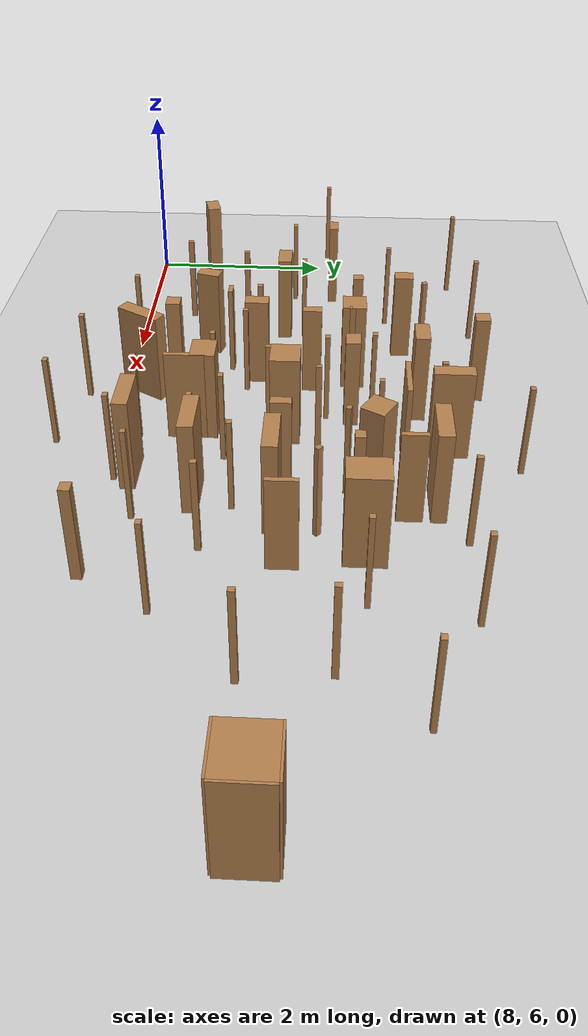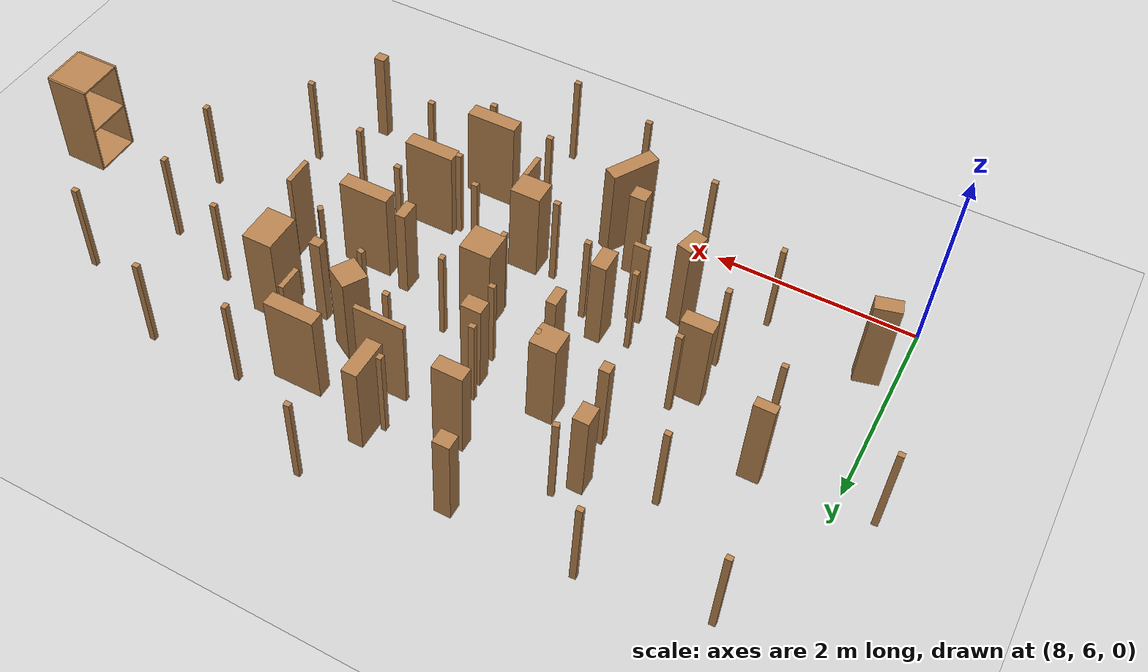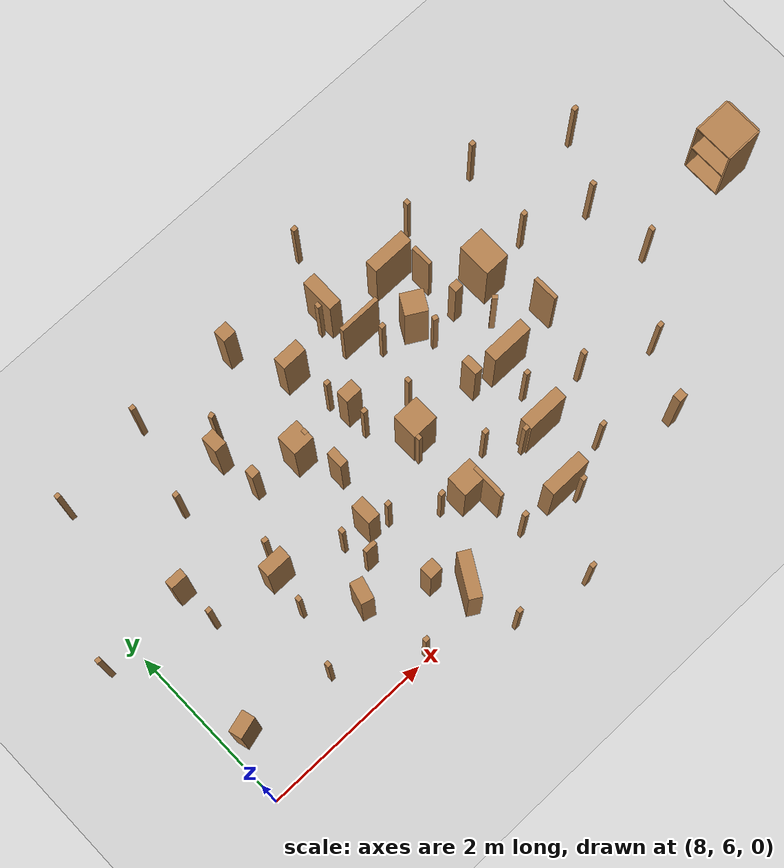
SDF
<sdf version="1.7">
 <world name="default">
  <model name="ground_plane">
   <pose>0 0 0 0 -0 0.716815</pose>
   <static>1</static>
   <link name="link">
    <collision name="collision">
     <geometry><plane><normal>0 0 1</normal><size>100 100</size></plane></geometry>
     <surface><friction><ode><mu>100</mu><mu2>50</mu2></ode></friction></surface>
    </collision>
    <visual name="visual">
     <cast_shadows>0</cast_shadows>
     <geometry><plane><normal>0 0 1</normal><size>100 100</size></plane></geometry>
     <material>
      <script><uri>file://media/materials/scripts/gazebo.material</uri><name>Gazebo/Grey</name></script>
     </material>
    </visual>
   </link>
  </model>
  <model name="t7">
   <pose>13.3103 7.35329 0 0 -0 0</pose>
   <link name="Wall_0">
    <collision name="Wall_0_Collision">
     <geometry><box><size>0.5 0.15 1</size></box></geometry>
     <pose>0 0 0.5 0 -0 0</pose>
    </collision>
    <visual name="Wall_0_Visual">
     <pose>0 0 0.5 0 -0 0</pose>
     <geometry><box><size>0.5 0.15 1</size></box></geometry>
     <material>
      <script><uri>file://media/materials/scripts/gazebo.material</uri><name>Gazebo/Wood</name></script>
      <ambient>1 1 1 1</ambient>
     </material>
     <meta><layer>0</layer></meta>
    </visual>
    <pose>-0.649487 1.88869 0 0 -0 0</pose>
   </link>
   <link name="Wall_101">
    <collision name="Wall_101_Collision">
     <geometry><box><size>0.3 0.25 1</size></box></geometry>
     <pose>0 0 0.5 0 -0 0</pose>
    </collision>
    <visual name="Wall_101_Visual">
     <pose>0 0 0.5 0 -0 0</pose>
     <geometry><box><size>0.3 0.25 1</size></box></geometry>
     <material>
      <script><uri>file://media/materials/scripts/gazebo.material</uri><name>Gazebo/Wood</name></script>
      <ambient>1 1 1 1</ambient>
     </material>
     <meta><layer>0</layer></meta>
    </visual>
    <pose>-1.7299 -0.40612 0 0 -0 0</pose>
   </link>
   <link name="Wall_105">
    <collision name="Wall_105_Collision">
     <geometry><box><size>0.4 0.15 1</size></box></geometry>
     <pose>0 0 0.5 0 -0 0</pose>
    </collision>
    <visual name="Wall_105_Visual">
     <pose>0 0 0.5 0 -0 0</pose>
     <geometry><box><size>0.4 0.15 1</size></box></geometry>
     <material>
      <script><uri>file://media/materials/scripts/gazebo.material</uri><name>Gazebo/Wood</name></script>
      <ambient>1 1 1 1</ambient>
     </material>
     <meta><layer>0</layer></meta>
    </visual>
    <pose>-1.44962 2.04439 0 0 -0 -1.5708</pose>
   </link>
   <link name="Wall_36">
    <collision name="Wall_36_Collision">
     <geometry><box><size>0.26 0.25 1</size></box></geometry>
     <pose>0 0 0.5 0 -0 0</pose>
    </collision>
    <visual name="Wall_36_Visual">
     <pose>0 0 0.5 0 -0 0</pose>
     <geometry><box><size>0.26 0.25 1</size></box></geometry>
     <material>
      <script><uri>file://media/materials/scripts/gazebo.material</uri><name>Gazebo/Wood</name></script>
      <ambient>1 1 1 1</ambient>
     </material>
     <meta><layer>0</layer></meta>
    </visual>
    <pose>-2.70321 1.09078 0 0 -0 0</pose>
   </link>
   <link name="Wall_38">
    <collision name="Wall_38_Collision">
     <geometry><box><size>0.26 0.25 1</size></box></geometry>
     <pose>0 0 0.5 0 -0 0</pose>
    </collision>
    <visual name="Wall_38_Visual">
     <pose>0 0 0.5 0 -0 0</pose>
     <geometry><box><size>0.26 0.25 1</size></box></geometry>
     <material>
      <script><uri>file://media/materials/scripts/gazebo.material</uri><name>Gazebo/Wood</name></script>
      <ambient>1 1 1 1</ambient>
     </material>
     <meta><layer>0</layer></meta>
    </visual>
    <pose>-0.842821 1.30664 0 0 -0 -0.523599</pose>
   </link>
   <link name="Wall_54">
    <collision name="Wall_54_Collision">
     <geometry><box><size>0.5 0.15 1</size></box></geometry>
     <pose>0 0 0.5 0 -0 0</pose>
    </collision>
    <visual name="Wall_54_Visual">
     <pose>0 0 0.5 0 -0 0</pose>
     <geometry><box><size>0.5 0.15 1</size></box></geometry>
     <material>
      <script><uri>file://media/materials/scripts/gazebo.material</uri><name>Gazebo/Wood</name></script>
      <ambient>1 1 1 1</ambient>
     </material>
     <meta><layer>0</layer></meta>
    </visual>
    <pose>-0.981633 -1.06267 0 0 -0 0</pose>
   </link>
   <link name="Wall_58">
    <collision name="Wall_58_Collision">
     <geometry><box><size>0.5 0.15 1</size></box></geometry>
     <pose>0 0 0.5 0 -0 0</pose>
    </collision>
    <visual name="Wall_58_Visual">
     <pose>0 0 0.5 0 -0 0</pose>
     <geometry><box><size>0.5 0.15 1</size></box></geometry>
     <material>
      <script><uri>file://media/materials/scripts/gazebo.material</uri><name>Gazebo/Wood</name></script>
      <ambient>1 1 1 1</ambient>
     </material>
     <meta><layer>0</layer></meta>
    </visual>
    <pose>-0.425004 0.347148 0 0 -0 0</pose>
   </link>
   <link name="Wall_60">
    <collision name="Wall_60_Collision">
     <geometry><box><size>0.3 0.15 1</size></box></geometry>
     <pose>0 0 0.5 0 -0 0</pose>
    </collision>
    <visual name="Wall_60_Visual">
     <pose>0 0 0.5 0 -0 0</pose>
     <geometry><box><size>0.3 0.15 1</size></box></geometry>
     <material>
      <script><uri>file://media/materials/scripts/gazebo.material</uri><name>Gazebo/Wood</name></script>
      <ambient>1 1 1 1</ambient>
     </material>
     <meta><layer>0</layer></meta>
    </visual>
    <pose>-3.72546 0.303649 0 0 -0 0</pose>
   </link>
   <link name="Wall_64">
    <collision name="Wall_64_Collision">
     <geometry><box><size>0.499906 0.15 1</size></box></geometry>
     <pose>0 0 0.5 0 -0 0</pose>
    </collision>
    <visual name="Wall_64_Visual">
     <pose>0 0 0.5 0 -0 0</pose>
     <geometry><box><size>0.499906 0.15 1</size></box></geometry>
     <material>
      <script><uri>file://media/materials/scripts/gazebo.material</uri><name>Gazebo/Wood</name></script>
      <ambient>1 1 1 1</ambient>
     </material>
     <meta><layer>0</layer></meta>
    </visual>
    <pose>-2.40422 -1.13934 0 0 -0 -2.09455</pose>
   </link>
   <link name="Wall_66">
    <collision name="Wall_66_Collision">
     <geometry><box><size>0.2 0.15 1</size></box></geometry>
     <pose>0 0 0.5 0 -0 0</pose>
    </collision>
    <visual name="Wall_66_Visual">
     <pose>0 0 0.5 0 -0 0</pose>
     <geometry><box><size>0.2 0.15 1</size></box></geometry>
     <material>
      <script><uri>file://media/materials/scripts/gazebo.material</uri><name>Gazebo/Wood</name></script>
      <ambient>1 1 1 1</ambient>
     </material>
     <meta><layer>0</layer></meta>
    </visual>
    <pose>-3.32256 1.63712 0 0 -0 -1.5708</pose>
   </link>
   <link name="Wall_70">
    <collision name="Wall_70_Collision">
     <geometry><box><size>0.3 0.15 1</size></box></geometry>
     <pose>0 0 0.5 0 -0 0</pose>
    </collision>
    <visual name="Wall_70_Visual">
     <pose>0 0 0.5 0 -0 0</pose>
     <geometry><box><size>0.3 0.15 1</size></box></geometry>
     <material>
      <script><uri>file://media/materials/scripts/gazebo.material</uri><name>Gazebo/Wood</name></script>
      <ambient>1 1 1 1</ambient>
     </material>
     <meta><layer>0</layer></meta>
    </visual>
    <pose>-2.14832 1.77582 0 0 -0 0</pose>
   </link>
   <link name="Wall_74">
    <collision name="Wall_74_Collision">
     <geometry><box><size>0.2 0.15 1</size></box></geometry>
     <pose>0 0 0.5 0 -0 0</pose>
    </collision>
    <visual name="Wall_74_Visual">
     <pose>0 0 0.5 0 -0 0</pose>
     <geometry><box><size>0.2 0.15 1</size></box></geometry>
     <material>
      <script><uri>file://media/materials/scripts/gazebo.material</uri><name>Gazebo/Wood</name></script>
      <ambient>1 1 1 1</ambient>
     </material>
     <meta><layer>0</layer></meta>
    </visual>
    <pose>-1.97481 1.07494 0 0 -0 0</pose>
   </link>
   <link name="Wall_78">
    <collision name="Wall_78_Collision">
     <geometry><box><size>0.31 0.3 1</size></box></geometry>
     <pose>0 0 0.5 0 -0 0</pose>
    </collision>
    <visual name="Wall_78_Visual">
     <pose>0 0 0.5 0 -0 0</pose>
     <geometry><box><size>0.31 0.3 1</size></box></geometry>
     <material>
      <script><uri>file://media/materials/scripts/gazebo.material</uri><name>Gazebo/Wood</name></script>
      <ambient>1 1 1 1</ambient>
     </material>
     <meta><layer>0</layer></meta>
    </visual>
    <pose>-1.67805 0.407964 0 0 -0 0</pose>
   </link>
   <link name="Wall_8">
    <collision name="Wall_8_Collision">
     <geometry><box><size>0.25 0.15 1</size></box></geometry>
     <pose>0 0 0.5 0 -0 0</pose>
    </collision>
    <visual name="Wall_8_Visual">
     <pose>0 0 0.5 0 -0 0</pose>
     <geometry><box><size>0.25 0.15 1</size></box></geometry>
     <material>
      <script><uri>file://media/materials/scripts/gazebo.material</uri><name>Gazebo/Wood</name></script>
      <ambient>1 1 1 1</ambient>
     </material>
     <meta><layer>0</layer></meta>
    </visual>
    <pose>-2.70615 0.053388 0 0 -0 -1.5708</pose>
   </link>
   <link name="Wall_80">
    <collision name="Wall_80_Collision">
     <geometry><box><size>0.4 0.3 1</size></box></geometry>
     <pose>0 0 0.5 0 -0 0</pose>
    </collision>
    <visual name="Wall_80_Visual">
     <pose>0 0 0.5 0 -0 0</pose>
     <geometry><box><size>0.4 0.3 1</size></box></geometry>
     <material>
      <script><uri>file://media/materials/scripts/gazebo.material</uri><name>Gazebo/Wood</name></script>
      <ambient>1 1 1 1</ambient>
     </material>
     <meta><layer>0</layer></meta>
    </visual>
    <pose>0.066257 1.20372 0 0 -0 1.5708</pose>
   </link>
   <link name="Wall_95">
    <collision name="Wall_95_Collision">
     <geometry><box><size>0.250424 0.15 1</size></box></geometry>
     <pose>0 0 0.5 0 -0 0</pose>
    </collision>
    <visual name="Wall_95_Visual">
     <pose>0 0 0.5 0 -0 0</pose>
     <geometry><box><size>0.250424 0.15 1</size></box></geometry>
     <material>
      <script><uri>file://media/materials/scripts/gazebo.material</uri><name>Gazebo/Wood</name></script>
      <ambient>1 1 1 1</ambient>
     </material>
     <meta><layer>0</layer></meta>
    </visual>
    <pose>-3.29392 -0.515931 0 0 -0 -1.83268</pose>
   </link>
   <link name="Wall_97">
    <collision name="Wall_97_Collision">
     <geometry><box><size>0.5 0.15 1</size></box></geometry>
     <pose>0 0 0.5 0 -0 0</pose>
    </collision>
    <visual name="Wall_97_Visual">
     <pose>0 0 0.5 0 -0 0</pose>
     <geometry><box><size>0.5 0.15 1</size></box></geometry>
     <material>
      <script><uri>file://media/materials/scripts/gazebo.material</uri><name>Gazebo/Wood</name></script>
      <ambient>1 1 1 1</ambient>
     </material>
     <meta><layer>0</layer></meta>
    </visual>
    <pose>-0.667027 -0.419912 0 0 -0 0</pose>
   </link>
   <static>1</static>
  </model>
  <model name="tree8">
   <pose>11.4237 7.76804 0 0 -0 0</pose>
   <link name="Wall_0">
    <collision name="Wall_0_Collision">
     <geometry><box><size>0.5 0.05 1</size></box></geometry>
     <pose>0 0 0.5 0 -0 0</pose>
    </collision>
    <visual name="Wall_0_Visual">
     <pose>0 0 0.5 0 -0 0</pose>
     <geometry><box><size>0.5 0.05 1</size></box></geometry>
     <material>
      <script><uri>file://media/materials/scripts/gazebo.material</uri><name>Gazebo/Wood</name></script>
      <ambient>1 1 1 1</ambient>
     </material>
     <meta><layer>0</layer></meta>
    </visual>
    <pose>0.546374 1.18725 0 0 -0 0</pose>
   </link>
   <link name="Wall_100">
    <collision name="Wall_100_Collision">
     <geometry><box><size>0.06 0.05 1</size></box></geometry>
     <pose>0 0 0.5 0 -0 0</pose>
    </collision>
    <visual name="Wall_100_Visual">
     <pose>0 0 0.5 0 -0 0</pose>
     <geometry><box><size>0.06 0.05 1</size></box></geometry>
     <material>
      <script><uri>file://media/materials/scripts/gazebo.material</uri><name>Gazebo/Wood</name></script>
      <ambient>1 1 1 1</ambient>
     </material>
     <meta><layer>0</layer></meta>
    </visual>
    <pose>1.0867 0.620713 0 0 -0 -0.261799</pose>
   </link>
   <link name="Wall_102">
    <collision name="Wall_102_Collision">
     <geometry><box><size>0.06 0.05 1</size></box></geometry>
     <pose>0 0 0.5 0 -0 0</pose>
    </collision>
    <visual name="Wall_102_Visual">
     <pose>0 0 0.5 0 -0 0</pose>
     <geometry><box><size>0.06 0.05 1</size></box></geometry>
     <material>
      <script><uri>file://media/materials/scripts/gazebo.material</uri><name>Gazebo/Wood</name></script>
      <ambient>1 1 1 1</ambient>
     </material>
     <meta><layer>0</layer></meta>
    </visual>
    <pose>1.68973 0.357341 0 0 -0 -0.785398</pose>
   </link>
   <link name="Wall_104">
    <collision name="Wall_104_Collision">
     <geometry><box><size>0.06 0.05 1</size></box></geometry>
     <pose>0 0 0.5 0 -0 0</pose>
    </collision>
    <visual name="Wall_104_Visual">
     <pose>0 0 0.5 0 -0 0</pose>
     <geometry><box><size>0.06 0.05 1</size></box></geometry>
     <material>
      <script><uri>file://media/materials/scripts/gazebo.material</uri><name>Gazebo/Wood</name></script>
      <ambient>1 1 1 1</ambient>
     </material>
     <meta><layer>0</layer></meta>
    </visual>
    <pose>3.39611 -0.233528 0 0 -0 -1.5708</pose>
   </link>
   <link name="Wall_106">
    <collision name="Wall_106_Collision">
     <geometry><box><size>0.06 0.05 1</size></box></geometry>
     <pose>0 0 0.5 0 -0 0</pose>
    </collision>
    <visual name="Wall_106_Visual">
     <pose>0 0 0.5 0 -0 0</pose>
     <geometry><box><size>0.06 0.05 1</size></box></geometry>
     <material>
      <script><uri>file://media/materials/scripts/gazebo.material</uri><name>Gazebo/Wood</name></script>
      <ambient>1 1 1 1</ambient>
     </material>
     <meta><layer>0</layer></meta>
    </visual>
    <pose>-1.13361 -0.348257 0 0 -0 -1.5708</pose>
   </link>
   <link name="Wall_109">
    <collision name="Wall_109_Collision">
     <geometry><box><size>0.06 0.05 1</size></box></geometry>
     <pose>0 0 0.5 0 -0 0</pose>
    </collision>
    <visual name="Wall_109_Visual">
     <pose>0 0 0.5 0 -0 0</pose>
     <geometry><box><size>0.06 0.05 1</size></box></geometry>
     <material>
      <script><uri>file://media/materials/scripts/gazebo.material</uri><name>Gazebo/Wood</name></script>
      <ambient>1 1 1 1</ambient>
     </material>
     <meta><layer>0</layer></meta>
    </visual>
    <pose>0.999504 -1.63628 0 0 -0 0</pose>
   </link>
   <link name="Wall_11">
    <collision name="Wall_11_Collision">
     <geometry><box><size>0.06 0.05 1</size></box></geometry>
     <pose>0 0 0.5 0 -0 0</pose>
    </collision>
    <visual name="Wall_11_Visual">
     <pose>0 0 0.5 0 -0 0</pose>
     <geometry><box><size>0.06 0.05 1</size></box></geometry>
     <material>
      <script><uri>file://media/materials/scripts/gazebo.material</uri><name>Gazebo/Wood</name></script>
      <ambient>1 1 1 1</ambient>
     </material>
     <meta><layer>0</layer></meta>
    </visual>
    <pose>0.943729 -0.863692 0 0 -0 0</pose>
   </link>
   <link name="Wall_111">
    <collision name="Wall_111_Collision">
     <geometry><box><size>0.06 0.05 1</size></box></geometry>
     <pose>0 0 0.5 0 -0 0</pose>
    </collision>
    <visual name="Wall_111_Visual">
     <pose>0 0 0.5 0 -0 0</pose>
     <geometry><box><size>0.06 0.05 1</size></box></geometry>
     <material>
      <script><uri>file://media/materials/scripts/gazebo.material</uri><name>Gazebo/Wood</name></script>
      <ambient>1 1 1 1</ambient>
     </material>
     <meta><layer>0</layer></meta>
    </visual>
    <pose>0.697383 2.33221 0 0 -0 0</pose>
   </link>
   <link name="Wall_115">
    <collision name="Wall_115_Collision">
     <geometry><box><size>0.11 0.1 1</size></box></geometry>
     <pose>0 0 0.5 0 -0 0</pose>
    </collision>
    <visual name="Wall_115_Visual">
     <pose>0 0 0.5 0 -0 0</pose>
     <geometry><box><size>0.11 0.1 1</size></box></geometry>
     <material>
      <script><uri>file://media/materials/scripts/gazebo.material</uri><name>Gazebo/Wood</name></script>
      <ambient>1 1 1 1</ambient>
     </material>
     <meta><layer>0</layer></meta>
    </visual>
    <pose>1.48399 0.72088 0 0 -0 0</pose>
   </link>
   <link name="Wall_117">
    <collision name="Wall_117_Collision">
     <geometry><box><size>0.06 0.05 1</size></box></geometry>
     <pose>0 0 0.5 0 -0 0</pose>
    </collision>
    <visual name="Wall_117_Visual">
     <pose>0 0 0.5 0 -0 0</pose>
     <geometry><box><size>0.06 0.05 1</size></box></geometry>
     <material>
      <script><uri>file://media/materials/scripts/gazebo.material</uri><name>Gazebo/Wood</name></script>
      <ambient>1 1 1 1</ambient>
     </material>
     <meta><layer>0</layer></meta>
    </visual>
    <pose>-3.76442 0.354336 0 0 -0 0</pose>
   </link>
   <link name="Wall_119">
    <collision name="Wall_119_Collision">
     <geometry><box><size>0.06 0.05 1</size></box></geometry>
     <pose>0 0 0.5 0 -0 0</pose>
    </collision>
    <visual name="Wall_119_Visual">
     <pose>0 0 0.5 0 -0 0</pose>
     <geometry><box><size>0.06 0.05 1</size></box></geometry>
     <material>
      <script><uri>file://media/materials/scripts/gazebo.material</uri><name>Gazebo/Wood</name></script>
      <ambient>1 1 1 1</ambient>
     </material>
     <meta><layer>0</layer></meta>
    </visual>
    <pose>0.428308 0.330529 0 0 -0 -1.5708</pose>
   </link>
   <link name="Wall_121">
    <collision name="Wall_121_Collision">
     <geometry><box><size>0.06 0.05 1</size></box></geometry>
     <pose>0 0 0.5 0 -0 0</pose>
    </collision>
    <visual name="Wall_121_Visual">
     <pose>0 0 0.5 0 -0 0</pose>
     <geometry><box><size>0.06 0.05 1</size></box></geometry>
     <material>
      <script><uri>file://media/materials/scripts/gazebo.material</uri><name>Gazebo/Wood</name></script>
      <ambient>1 1 1 1</ambient>
     </material>
     <meta><layer>0</layer></meta>
    </visual>
    <pose>-1.27755 1.43796 0 0 -0 0.261799</pose>
   </link>
   <link name="Wall_123">
    <collision name="Wall_123_Collision">
     <geometry><box><size>0.06 0.05 1</size></box></geometry>
     <pose>0 0 0.5 0 -0 0</pose>
    </collision>
    <visual name="Wall_123_Visual">
     <pose>0 0 0.5 0 -0 0</pose>
     <geometry><box><size>0.06 0.05 1</size></box></geometry>
     <material>
      <script><uri>file://media/materials/scripts/gazebo.material</uri><name>Gazebo/Wood</name></script>
      <ambient>1 1 1 1</ambient>
     </material>
     <meta><layer>0</layer></meta>
    </visual>
    <pose>2.71375 -1.03117 0 0 -0 0</pose>
   </link>
   <link name="Wall_13">
    <collision name="Wall_13_Collision">
     <geometry><box><size>0.06 0.05 1</size></box></geometry>
     <pose>0 0 0.5 0 -0 0</pose>
    </collision>
    <visual name="Wall_13_Visual">
     <pose>0 0 0.5 0 -0 0</pose>
     <geometry><box><size>0.06 0.05 1</size></box></geometry>
     <material>
      <script><uri>file://media/materials/scripts/gazebo.material</uri><name>Gazebo/Wood</name></script>
      <ambient>1 1 1 1</ambient>
     </material>
     <meta><layer>0</layer></meta>
    </visual>
    <pose>-0.11945 0.405438 0 0 -0 3.14159</pose>
   </link>
   <link name="Wall_15">
    <collision name="Wall_15_Collision">
     <geometry><box><size>0.06 0.05 1</size></box></geometry>
     <pose>0 0 0.5 0 -0 0</pose>
    </collision>
    <visual name="Wall_15_Visual">
     <pose>0 0 0.5 0 -0 0</pose>
     <geometry><box><size>0.06 0.05 1</size></box></geometry>
     <material>
      <script><uri>file://media/materials/scripts/gazebo.material</uri><name>Gazebo/Wood</name></script>
      <ambient>1 1 1 1</ambient>
     </material>
     <meta><layer>0</layer></meta>
    </visual>
    <pose>3.76442 1.2764 0 0 -0 0</pose>
   </link>
   <link name="Wall_17">
    <collision name="Wall_17_Collision">
     <geometry><box><size>0.06 0.05 1</size></box></geometry>
     <pose>0 0 0.5 0 -0 0</pose>
    </collision>
    <visual name="Wall_17_Visual">
     <pose>0 0 0.5 0 -0 0</pose>
     <geometry><box><size>0.06 0.05 1</size></box></geometry>
     <material>
      <script><uri>file://media/materials/scripts/gazebo.material</uri><name>Gazebo/Wood</name></script>
      <ambient>1 1 1 1</ambient>
     </material>
     <meta><layer>0</layer></meta>
    </visual>
    <pose>0.622664 -0.603591 0 0 -0 0</pose>
   </link>
   <link name="Wall_19">
    <collision name="Wall_19_Collision">
     <geometry><box><size>0.06 0.05 1</size></box></geometry>
     <pose>0 0 0.5 0 -0 0</pose>
    </collision>
    <visual name="Wall_19_Visual">
     <pose>0 0 0.5 0 -0 0</pose>
     <geometry><box><size>0.06 0.05 1</size></box></geometry>
     <material>
      <script><uri>file://media/materials/scripts/gazebo.material</uri><name>Gazebo/Wood</name></script>
      <ambient>1 1 1 1</ambient>
     </material>
     <meta><layer>0</layer></meta>
    </visual>
    <pose>-1.80566 2.05136 0 0 -0 0</pose>
   </link>
   <link name="Wall_21">
    <collision name="Wall_21_Collision">
     <geometry><box><size>0.06 0.05 1</size></box></geometry>
     <pose>0 0 0.5 0 -0 0</pose>
    </collision>
    <visual name="Wall_21_Visual">
     <pose>0 0 0.5 0 -0 0</pose>
     <geometry><box><size>0.06 0.05 1</size></box></geometry>
     <material>
      <script><uri>file://media/materials/scripts/gazebo.material</uri><name>Gazebo/Wood</name></script>
      <ambient>1 1 1 1</ambient>
     </material>
     <meta><layer>0</layer></meta>
    </visual>
    <pose>1.75051 1.73435 0 0 -0 -1.5708</pose>
   </link>
   <link name="Wall_23">
    <collision name="Wall_23_Collision">
     <geometry><box><size>0.06 0.05 1</size></box></geometry>
     <pose>0 0 0.5 0 -0 0</pose>
    </collision>
    <visual name="Wall_23_Visual">
     <pose>0 0 0.5 0 -0 0</pose>
     <geometry><box><size>0.06 0.05 1</size></box></geometry>
     <material>
      <script><uri>file://media/materials/scripts/gazebo.material</uri><name>Gazebo/Wood</name></script>
      <ambient>1 1 1 1</ambient>
     </material>
     <meta><layer>0</layer></meta>
    </visual>
    <pose>0.632955 0.933456 0 0 -0 0</pose>
   </link>
   <link name="Wall_25">
    <collision name="Wall_25_Collision">
     <geometry><box><size>0.06 0.05 1</size></box></geometry>
     <pose>0 0 0.5 0 -0 0</pose>
    </collision>
    <visual name="Wall_25_Visual">
     <pose>0 0 0.5 0 -0 0</pose>
     <geometry><box><size>0.06 0.05 1</size></box></geometry>
     <material>
      <script><uri>file://media/materials/scripts/gazebo.material</uri><name>Gazebo/Wood</name></script>
      <ambient>1 1 1 1</ambient>
     </material>
     <meta><layer>0</layer></meta>
    </visual>
    <pose>2.70158 1.73872 0 0 -0 0</pose>
   </link>
   <link name="Wall_27">
    <collision name="Wall_27_Collision">
     <geometry><box><size>0.16 0.15 1</size></box></geometry>
     <pose>0 0 0.5 0 -0 0</pose>
    </collision>
    <visual name="Wall_27_Visual">
     <pose>0 0 0.5 0 -0 0</pose>
     <geometry><box><size>0.16 0.15 1</size></box></geometry>
     <material>
      <script><uri>file://media/materials/scripts/gazebo.material</uri><name>Gazebo/Wood</name></script>
      <ambient>1 1 1 1</ambient>
     </material>
     <meta><layer>0</layer></meta>
    </visual>
    <pose>-0.58117 1.99921 0 0 -0 0</pose>
   </link>
   <link name="Wall_29">
    <collision name="Wall_29_Collision">
     <geometry><box><size>0.06 0.05 1</size></box></geometry>
     <pose>0 0 0.5 0 -0 0</pose>
    </collision>
    <visual name="Wall_29_Visual">
     <pose>0 0 0.5 0 -0 0</pose>
     <geometry><box><size>0.06 0.05 1</size></box></geometry>
     <material>
      <script><uri>file://media/materials/scripts/gazebo.material</uri><name>Gazebo/Wood</name></script>
      <ambient>1 1 1 1</ambient>
     </material>
     <meta><layer>0</layer></meta>
    </visual>
    <pose>-1.75816 0.113672 0 0 -0 0</pose>
   </link>
   <link name="Wall_3">
    <collision name="Wall_3_Collision">
     <geometry><box><size>0.06 0.05 1</size></box></geometry>
     <pose>0 0 0.5 0 -0 0</pose>
    </collision>
    <visual name="Wall_3_Visual">
     <pose>0 0 0.5 0 -0 0</pose>
     <geometry><box><size>0.06 0.05 1</size></box></geometry>
     <material>
      <script><uri>file://media/materials/scripts/gazebo.material</uri><name>Gazebo/Wood</name></script>
      <ambient>1 1 1 1</ambient>
     </material>
     <meta><layer>0</layer></meta>
    </visual>
    <pose>0.442272 -2.33221 0 0 -0 0</pose>
   </link>
   <link name="Wall_31">
    <collision name="Wall_31_Collision">
     <geometry><box><size>0.297314 0.05 1</size></box></geometry>
     <pose>0 0 0.5 0 -0 0</pose>
    </collision>
    <visual name="Wall_31_Visual">
     <pose>0 0 0.5 0 -0 0</pose>
     <geometry><box><size>0.297314 0.05 1</size></box></geometry>
     <material>
      <script><uri>file://media/materials/scripts/gazebo.material</uri><name>Gazebo/Wood</name></script>
      <ambient>1 1 1 1</ambient>
     </material>
     <meta><layer>0</layer></meta>
    </visual>
    <pose>2.13787 0.061401 0 0 -0 1.58213</pose>
   </link>
   <link name="Wall_34">
    <collision name="Wall_34_Collision">
     <geometry><box><size>0.25 0.05 1</size></box></geometry>
     <pose>0 0 0.5 0 -0 0</pose>
    </collision>
    <visual name="Wall_34_Visual">
     <pose>0 0 0.5 0 -0 0</pose>
     <geometry><box><size>0.25 0.05 1</size></box></geometry>
     <material>
      <script><uri>file://media/materials/scripts/gazebo.material</uri><name>Gazebo/Wood</name></script>
      <ambient>1 1 1 1</ambient>
     </material>
     <meta><layer>0</layer></meta>
    </visual>
    <pose>1.45849 1.20183 0 0 -0 1.5708</pose>
   </link>
   <link name="Wall_36">
    <collision name="Wall_36_Collision">
     <geometry><box><size>0.06 0.05 1</size></box></geometry>
     <pose>0 0 0.5 0 -0 0</pose>
    </collision>
    <visual name="Wall_36_Visual">
     <pose>0 0 0.5 0 -0 0</pose>
     <geometry><box><size>0.06 0.05 1</size></box></geometry>
     <material>
      <script><uri>file://media/materials/scripts/gazebo.material</uri><name>Gazebo/Wood</name></script>
      <ambient>1 1 1 1</ambient>
     </material>
     <meta><layer>0</layer></meta>
    </visual>
    <pose>-1.91663 -0.555938 0 0 -0 1.5708</pose>
   </link>
   <link name="Wall_41">
    <collision name="Wall_41_Collision">
     <geometry><box><size>0.06 0.05 1</size></box></geometry>
     <pose>0 0 0.5 0 -0 0</pose>
    </collision>
    <visual name="Wall_41_Visual">
     <pose>0 0 0.5 0 -0 0</pose>
     <geometry><box><size>0.06 0.05 1</size></box></geometry>
     <material>
      <script><uri>file://media/materials/scripts/gazebo.material</uri><name>Gazebo/Wood</name></script>
      <ambient>1 1 1 1</ambient>
     </material>
     <meta><layer>0</layer></meta>
    </visual>
    <pose>-1.27887 -1.72234 0 0 -0 0</pose>
   </link>
   <link name="Wall_43">
    <collision name="Wall_43_Collision">
     <geometry><box><size>0.06 0.05 1</size></box></geometry>
     <pose>0 0 0.5 0 -0 0</pose>
    </collision>
    <visual name="Wall_43_Visual">
     <pose>0 0 0.5 0 -0 0</pose>
     <geometry><box><size>0.06 0.05 1</size></box></geometry>
     <material>
      <script><uri>file://media/materials/scripts/gazebo.material</uri><name>Gazebo/Wood</name></script>
      <ambient>1 1 1 1</ambient>
     </material>
     <meta><layer>0</layer></meta>
    </visual>
    <pose>0.307465 1.54967 0 0 -0 -1.5708</pose>
   </link>
   <link name="Wall_45">
    <collision name="Wall_45_Collision">
     <geometry><box><size>0.06 0.05 1</size></box></geometry>
     <pose>0 0 0.5 0 -0 0</pose>
    </collision>
    <visual name="Wall_45_Visual">
     <pose>0 0 0.5 0 -0 0</pose>
     <geometry><box><size>0.06 0.05 1</size></box></geometry>
     <material>
      <script><uri>file://media/materials/scripts/gazebo.material</uri><name>Gazebo/Wood</name></script>
      <ambient>1 1 1 1</ambient>
     </material>
     <meta><layer>0</layer></meta>
    </visual>
    <pose>-0.607221 -0.465526 0 0 -0 0</pose>
   </link>
   <link name="Wall_5">
    <collision name="Wall_5_Collision">
     <geometry><box><size>0.25 0.15 1</size></box></geometry>
     <pose>0 0 0.5 0 -0 0</pose>
    </collision>
    <visual name="Wall_5_Visual">
     <pose>0 0 0.5 0 -0 0</pose>
     <geometry><box><size>0.25 0.15 1</size></box></geometry>
     <material>
      <script><uri>file://media/materials/scripts/gazebo.material</uri><name>Gazebo/Wood</name></script>
      <ambient>1 1 1 1</ambient>
     </material>
     <meta><layer>0</layer></meta>
    </visual>
    <pose>-3.16395 -1.0862 0 0 -0 0.261799</pose>
   </link>
   <link name="Wall_50">
    <collision name="Wall_50_Collision">
     <geometry><box><size>0.06 0.05 1</size></box></geometry>
     <pose>0 0 0.5 0 -0 0</pose>
    </collision>
    <visual name="Wall_50_Visual">
     <pose>0 0 0.5 0 -0 0</pose>
     <geometry><box><size>0.06 0.05 1</size></box></geometry>
     <material>
      <script><uri>file://media/materials/scripts/gazebo.material</uri><name>Gazebo/Wood</name></script>
      <ambient>1 1 1 1</ambient>
     </material>
     <meta><layer>0</layer></meta>
    </visual>
    <pose>1.9382 -0.698549 0 0 -0 -1.5708</pose>
   </link>
   <link name="Wall_52">
    <collision name="Wall_52_Collision">
     <geometry><box><size>0.06 0.05 1</size></box></geometry>
     <pose>0 0 0.5 0 -0 0</pose>
    </collision>
    <visual name="Wall_52_Visual">
     <pose>0 0 0.5 0 -0 0</pose>
     <geometry><box><size>0.06 0.05 1</size></box></geometry>
     <material>
      <script><uri>file://media/materials/scripts/gazebo.material</uri><name>Gazebo/Wood</name></script>
      <ambient>1 1 1 1</ambient>
     </material>
     <meta><layer>0</layer></meta>
    </visual>
    <pose>2.55047 0.804883 0 0 -0 0</pose>
   </link>
   <link name="Wall_54">
    <collision name="Wall_54_Collision">
     <geometry><box><size>0.06 0.05 1</size></box></geometry>
     <pose>0 0 0.5 0 -0 0</pose>
    </collision>
    <visual name="Wall_54_Visual">
     <pose>0 0 0.5 0 -0 0</pose>
     <geometry><box><size>0.06 0.05 1</size></box></geometry>
     <material>
      <script><uri>file://media/materials/scripts/gazebo.material</uri><name>Gazebo/Wood</name></script>
      <ambient>1 1 1 1</ambient>
     </material>
     <meta><layer>0</layer></meta>
    </visual>
    <pose>-2.96028 1.8825 0 0 -0 0</pose>
   </link>
   <link name="Wall_56">
    <collision name="Wall_56_Collision">
     <geometry><box><size>0.06 0.05 1</size></box></geometry>
     <pose>0 0 0.5 0 -0 0</pose>
    </collision>
    <visual name="Wall_56_Visual">
     <pose>0 0 0.5 0 -0 0</pose>
     <geometry><box><size>0.06 0.05 1</size></box></geometry>
     <material>
      <script><uri>file://media/materials/scripts/gazebo.material</uri><name>Gazebo/Wood</name></script>
      <ambient>1 1 1 1</ambient>
     </material>
     <meta><layer>0</layer></meta>
    </visual>
    <pose>0.089204 -0.180618 0 0 -0 1.5708</pose>
   </link>
   <link name="Wall_58">
    <collision name="Wall_58_Collision">
     <geometry><box><size>0.06 0.05 1</size></box></geometry>
     <pose>0 0 0.5 0 -0 0</pose>
    </collision>
    <visual name="Wall_58_Visual">
     <pose>0 0 0.5 0 -0 0</pose>
     <geometry><box><size>0.06 0.05 1</size></box></geometry>
     <material>
      <script><uri>file://media/materials/scripts/gazebo.material</uri><name>Gazebo/Wood</name></script>
      <ambient>1 1 1 1</ambient>
     </material>
     <meta><layer>0</layer></meta>
    </visual>
    <pose>3.30869 0.544898 0 0 -0 1.5708</pose>
   </link>
   <link name="Wall_60">
    <collision name="Wall_60_Collision">
     <geometry><box><size>0.06 0.05 1</size></box></geometry>
     <pose>0 0 0.5 0 -0 0</pose>
    </collision>
    <visual name="Wall_60_Visual">
     <pose>0 0 0.5 0 -0 0</pose>
     <geometry><box><size>0.06 0.05 1</size></box></geometry>
     <material>
      <script><uri>file://media/materials/scripts/gazebo.material</uri><name>Gazebo/Wood</name></script>
      <ambient>1 1 1 1</ambient>
     </material>
     <meta><layer>0</layer></meta>
    </visual>
    <pose>-0.142451 -0.761577 0 0 -0 0</pose>
   </link>
   <link name="Wall_62">
    <collision name="Wall_62_Collision">
     <geometry><box><size>0.2 0.1 1</size></box></geometry>
     <pose>0 0 0.5 0 -0 0</pose>
    </collision>
    <visual name="Wall_62_Visual">
     <pose>0 0 0.5 0 -0 0</pose>
     <geometry><box><size>0.2 0.1 1</size></box></geometry>
     <material>
      <script><uri>file://media/materials/scripts/gazebo.material</uri><name>Gazebo/Wood</name></script>
      <ambient>1 1 1 1</ambient>
     </material>
     <meta><layer>0</layer></meta>
    </visual>
    <pose>1.01044 -0.006638 0 0 -0 1.5708</pose>
   </link>
   <link name="Wall_67">
    <collision name="Wall_67_Collision">
     <geometry><box><size>0.06 0.05 1</size></box></geometry>
     <pose>0 0 0.5 0 -0 0</pose>
    </collision>
    <visual name="Wall_67_Visual">
     <pose>0 0 0.5 0 -0 0</pose>
     <geometry><box><size>0.06 0.05 1</size></box></geometry>
     <material>
      <script><uri>file://media/materials/scripts/gazebo.material</uri><name>Gazebo/Wood</name></script>
      <ambient>1 1 1 1</ambient>
     </material>
     <meta><layer>0</layer></meta>
    </visual>
    <pose>1.36473 -0.450743 0 0 -0 0</pose>
   </link>
   <link name="Wall_69">
    <collision name="Wall_69_Collision">
     <geometry><box><size>0.15 0.05 1</size></box></geometry>
     <pose>0 0 0.5 0 -0 0</pose>
    </collision>
    <visual name="Wall_69_Visual">
     <pose>0 0 0.5 0 -0 0</pose>
     <geometry><box><size>0.15 0.05 1</size></box></geometry>
     <material>
      <script><uri>file://media/materials/scripts/gazebo.material</uri><name>Gazebo/Wood</name></script>
      <ambient>1 1 1 1</ambient>
     </material>
     <meta><layer>0</layer></meta>
    </visual>
    <pose>-1.04216 -0.661586 0 0 -0 0</pose>
   </link>
   <link name="Wall_7">
    <collision name="Wall_7_Collision">
     <geometry><box><size>0.06 0.05 1</size></box></geometry>
     <pose>0 0 0.5 0 -0 0</pose>
    </collision>
    <visual name="Wall_7_Visual">
     <pose>0 0 0.5 0 -0 0</pose>
     <geometry><box><size>0.06 0.05 1</size></box></geometry>
     <material>
      <script><uri>file://media/materials/scripts/gazebo.material</uri><name>Gazebo/Wood</name></script>
      <ambient>1 1 1 1</ambient>
     </material>
     <meta><layer>0</layer></meta>
    </visual>
    <pose>-2.08966 1.0738 0 0 -0 0</pose>
   </link>
   <link name="Wall_72">
    <collision name="Wall_72_Collision">
     <geometry><box><size>0.16 0.15 1</size></box></geometry>
     <pose>0 0 0.5 0 -0 0</pose>
    </collision>
    <visual name="Wall_72_Visual">
     <pose>0 0 0.5 0 -0 0</pose>
     <geometry><box><size>0.16 0.15 1</size></box></geometry>
     <material>
      <script><uri>file://media/materials/scripts/gazebo.material</uri><name>Gazebo/Wood</name></script>
      <ambient>1 1 1 1</ambient>
     </material>
     <meta><layer>0</layer></meta>
    </visual>
    <pose>-0.753233 -1.24646 0 0 -0 0</pose>
   </link>
   <link name="Wall_76">
    <collision name="Wall_76_Collision">
     <geometry><box><size>0.2 0.1 1</size></box></geometry>
     <pose>0 0 0.5 0 -0 0</pose>
    </collision>
    <visual name="Wall_76_Visual">
     <pose>0 0 0.5 0 -0 0</pose>
     <geometry><box><size>0.2 0.1 1</size></box></geometry>
     <material>
      <script><uri>file://media/materials/scripts/gazebo.material</uri><name>Gazebo/Wood</name></script>
      <ambient>1 1 1 1</ambient>
     </material>
     <meta><layer>0</layer></meta>
    </visual>
    <pose>-2.6645 0.432607 0 0 -0 0</pose>
   </link>
   <link name="Wall_79">
    <collision name="Wall_79_Collision">
     <geometry><box><size>0.4 0.05 1</size></box></geometry>
     <pose>0 0 0.5 0 -0 0</pose>
    </collision>
    <visual name="Wall_79_Visual">
     <pose>0 0 0.5 0 -0 0</pose>
     <geometry><box><size>0.4 0.05 1</size></box></geometry>
     <material>
      <script><uri>file://media/materials/scripts/gazebo.material</uri><name>Gazebo/Wood</name></script>
      <ambient>1 1 1 1</ambient>
     </material>
     <meta><layer>0</layer></meta>
    </visual>
    <pose>0.282438 -1.00039 0 0 -0 -1.5708</pose>
   </link>
   <link name="Wall_81">
    <collision name="Wall_81_Collision">
     <geometry><box><size>0.06 0.05 1</size></box></geometry>
     <pose>0 0 0.5 0 -0 0</pose>
    </collision>
    <visual name="Wall_81_Visual">
     <pose>0 0 0.5 0 -0 0</pose>
     <geometry><box><size>0.06 0.05 1</size></box></geometry>
     <material>
      <script><uri>file://media/materials/scripts/gazebo.material</uri><name>Gazebo/Wood</name></script>
      <ambient>1 1 1 1</ambient>
     </material>
     <meta><layer>0</layer></meta>
    </visual>
    <pose>-2.15143 -1.23356 0 0 -0 -1.5708</pose>
   </link>
   <link name="Wall_83">
    <collision name="Wall_83_Collision">
     <geometry><box><size>0.06 0.05 1</size></box></geometry>
     <pose>0 0 0.5 0 -0 0</pose>
    </collision>
    <visual name="Wall_83_Visual">
     <pose>0 0 0.5 0 -0 0</pose>
     <geometry><box><size>0.06 0.05 1</size></box></geometry>
     <material>
      <script><uri>file://media/materials/scripts/gazebo.material</uri><name>Gazebo/Wood</name></script>
      <ambient>1 1 1 1</ambient>
     </material>
     <meta><layer>0</layer></meta>
    </visual>
    <pose>-0.191562 0.880037 0 0 -0 0</pose>
   </link>
   <link name="Wall_85">
    <collision name="Wall_85_Collision">
     <geometry><box><size>0.11 0.1 1</size></box></geometry>
     <pose>0 0 0.5 0 -0 0</pose>
    </collision>
    <visual name="Wall_85_Visual">
     <pose>0 0 0.5 0 -0 0</pose>
     <geometry><box><size>0.11 0.1 1</size></box></geometry>
     <material>
      <script><uri>file://media/materials/scripts/gazebo.material</uri><name>Gazebo/Wood</name></script>
      <ambient>1 1 1 1</ambient>
     </material>
     <meta><layer>0</layer></meta>
    </visual>
    <pose>-1.37409 0.717661 0 0 -0 -1.5708</pose>
   </link>
   <link name="Wall_87">
    <collision name="Wall_87_Collision">
     <geometry><box><size>0.2 0.1 1</size></box></geometry>
     <pose>0 0 0.5 0 -0 0</pose>
    </collision>
    <visual name="Wall_87_Visual">
     <pose>0 0 0.5 0 -0 0</pose>
     <geometry><box><size>0.2 0.1 1</size></box></geometry>
     <material>
      <script><uri>file://media/materials/scripts/gazebo.material</uri><name>Gazebo/Wood</name></script>
      <ambient>1 1 1 1</ambient>
     </material>
     <meta><layer>0</layer></meta>
    </visual>
    <pose>-0.650709 0.234482 0 0 -0 -1.5708</pose>
   </link>
   <link name="Wall_89">
    <collision name="Wall_89_Collision">
     <geometry><box><size>0.06 0.05 1</size></box></geometry>
     <pose>0 0 0.5 0 -0 0</pose>
    </collision>
    <visual name="Wall_89_Visual">
     <pose>0 0 0.5 0 -0 0</pose>
     <geometry><box><size>0.06 0.05 1</size></box></geometry>
     <material>
      <script><uri>file://media/materials/scripts/gazebo.material</uri><name>Gazebo/Wood</name></script>
      <ambient>1 1 1 1</ambient>
     </material>
     <meta><layer>0</layer></meta>
    </visual>
    <pose>-2.64058 -0.024708 0 0 -0 0</pose>
   </link>
   <link name="Wall_9">
    <collision name="Wall_9_Collision">
     <geometry><box><size>0.06 0.05 1</size></box></geometry>
     <pose>0 0 0.5 0 -0 0</pose>
    </collision>
    <visual name="Wall_9_Visual">
     <pose>0 0 0.5 0 -0 0</pose>
     <geometry><box><size>0.06 0.05 1</size></box></geometry>
     <material>
      <script><uri>file://media/materials/scripts/gazebo.material</uri><name>Gazebo/Wood</name></script>
      <ambient>1 1 1 1</ambient>
     </material>
     <meta><layer>0</layer></meta>
    </visual>
    <pose>-0.405785 -2.15603 0 0 -0 0</pose>
   </link>
   <link name="Wall_91">
    <collision name="Wall_91_Collision">
     <geometry><box><size>0.06 0.05 1</size></box></geometry>
     <pose>0 0 0.5 0 -0 0</pose>
    </collision>
    <visual name="Wall_91_Visual">
     <pose>0 0 0.5 0 -0 0</pose>
     <geometry><box><size>0.06 0.05 1</size></box></geometry>
     <material>
      <script><uri>file://media/materials/scripts/gazebo.material</uri><name>Gazebo/Wood</name></script>
      <ambient>1 1 1 1</ambient>
     </material>
     <meta><layer>0</layer></meta>
    </visual>
    <pose>0.317501 -1.49715 0 0 -0 0</pose>
   </link>
   <link name="Wall_93">
    <collision name="Wall_93_Collision">
     <geometry><box><size>0.11 0.1 1</size></box></geometry>
     <pose>0 0 0.5 0 -0 0</pose>
    </collision>
    <visual name="Wall_93_Visual">
     <pose>0 0 0.5 0 -0 0</pose>
     <geometry><box><size>0.11 0.1 1</size></box></geometry>
     <material>
      <script><uri>file://media/materials/scripts/gazebo.material</uri><name>Gazebo/Wood</name></script>
      <ambient>1 1 1 1</ambient>
     </material>
     <meta><layer>0</layer></meta>
    </visual>
    <pose>2.32217 -1.70227 0 0 -0 0</pose>
   </link>
   <link name="Wall_96">
    <collision name="Wall_96_Collision">
     <geometry><box><size>0.06 0.05 1</size></box></geometry>
     <pose>0 0 0.5 0 -0 0</pose>
    </collision>
    <visual name="Wall_96_Visual">
     <pose>0 0 0.5 0 -0 0</pose>
     <geometry><box><size>0.06 0.05 1</size></box></geometry>
     <material>
      <script><uri>file://media/materials/scripts/gazebo.material</uri><name>Gazebo/Wood</name></script>
      <ambient>1 1 1 1</ambient>
     </material>
     <meta><layer>0</layer></meta>
    </visual>
    <pose>1.54682 -1.37027 0 0 -0 0</pose>
   </link>
   <link name="Wall_98">
    <collision name="Wall_98_Collision">
     <geometry><box><size>0.06 0.05 1</size></box></geometry>
     <pose>0 0 0.5 0 -0 0</pose>
    </collision>
    <visual name="Wall_98_Visual">
     <pose>0 0 0.5 0 -0 0</pose>
     <geometry><box><size>0.06 0.05 1</size></box></geometry>
     <material>
      <script><uri>file://media/materials/scripts/gazebo.material</uri><name>Gazebo/Wood</name></script>
      <ambient>1 1 1 1</ambient>
     </material>
     <meta><layer>0</layer></meta>
    </visual>
    <pose>-0.706774 0.657671 0 0 -0 -1.5708</pose>
   </link>
   <static>1</static>
  </model>
  <model name="cabinet_5">
   <static>1</static>
   <link name="cabinet_bottom_plate">
    <inertial>
     <pose>0 0 -1 0 -0 0</pose>
     <inertia><ixx>2.05</ixx><ixy>0</ixy><ixz>0</ixz><iyy>2.05</iyy><iyz>0</iyz><izz>2.05</izz></inertia>
     <mass>25</mass>
    </inertial>
    <collision name="cabinet_bottom_plate_geom">
     <pose>0 0 0.01 0 -0 0</pose>
     <geometry><box><size>0.45 0.45 0.02</size></box></geometry>
    </collision>
    <visual name="cabinet_bottom_plate_geom_visual">
     <pose>0 0 0.01 0 -0 0</pose>
     <geometry><box><size>0.45 0.45 0.02</size></box></geometry>
     <material>
      <script><uri>file://media/materials/scripts/gazebo.material</uri><name>Gazebo/Wood</name></script>
     </material>
    </visual>
    <collision name="cabinet_bottom_plate_geom_cabinet_back_plate">
     <pose>0.235 0 0.51 0 -0 0</pose>
     <geometry><box><size>0.02 0.45 1.02</size></box></geometry>
    </collision>
    <visual name="cabinet_bottom_plate_geom_cabinet_back_plate_visual">
     <pose>0.235 0 0.51 0 -0 0</pose>
     <geometry><box><size>0.02 0.45 1.02</size></box></geometry>
     <material>
      <script><uri>file://media/materials/scripts/gazebo.material</uri><name>Gazebo/Wood</name></script>
     </material>
    </visual>
    <collision name="cabinet_bottom_plate_geom_cabinet_left_plate">
     <pose>0 0.235 0.51 0 -0 0</pose>
     <geometry><box><size>0.45 0.02 1.02</size></box></geometry>
    </collision>
    <visual name="cabinet_bottom_plate_geom_cabinet_left_plate_visual">
     <pose>0 0.235 0.51 0 -0 0</pose>
     <geometry><box><size>0.45 0.02 1.02</size></box></geometry>
     <material>
      <script><uri>file://media/materials/scripts/gazebo.material</uri><name>Gazebo/Wood</name></script>
     </material>
    </visual>
    <collision name="cabinet_bottom_plate_geom_cabinet_middle_plate">
     <pose>0 0 0.51 0 -0 0</pose>
     <geometry><box><size>0.45 0.45 0.02</size></box></geometry>
    </collision>
    <visual name="cabinet_bottom_plate_geom_cabinet_middle_plate_visual">
     <pose>0 0 0.51 0 -0 0</pose>
     <geometry><box><size>0.45 0.45 0.02</size></box></geometry>
     <material>
      <script><uri>file://media/materials/scripts/gazebo.material</uri><name>Gazebo/Wood</name></script>
     </material>
    </visual>
    <collision name="cabinet_bottom_plate_geom_cabinet_right_plate">
     <pose>0 -0.235 0.51 0 -0 0</pose>
     <geometry><box><size>0.45 0.02 1.02</size></box></geometry>
    </collision>
    <visual name="cabinet_bottom_plate_geom_cabinet_right_plate_visual">
     <pose>0 -0.235 0.51 0 -0 0</pose>
     <geometry><box><size>0.45 0.02 1.02</size></box></geometry>
     <material>
      <script><uri>file://media/materials/scripts/gazebo.material</uri><name>Gazebo/Wood</name></script>
     </material>
    </visual>
    <collision name="cabinet_bottom_plate_geom_cabinet_top_plate">
     <pose>0 0 1.01 0 -0 0</pose>
     <geometry><box><size>0.45 0.45 0.02</size></box></geometry>
    </collision>
    <visual name="cabinet_bottom_plate_geom_cabinet_top_plate_visual">
     <pose>0 0 1.01 0 -0 0</pose>
     <geometry><box><size>0.45 0.45 0.02</size></box></geometry>
     <material>
      <script><uri>file://media/materials/scripts/gazebo.material</uri><name>Gazebo/Wood</name></script>
     </material>
    </visual>
   </link>
   <pose>16.1702 7.75011 0 0 -0 0</pose>
  </model>
 </world>
</sdf>
